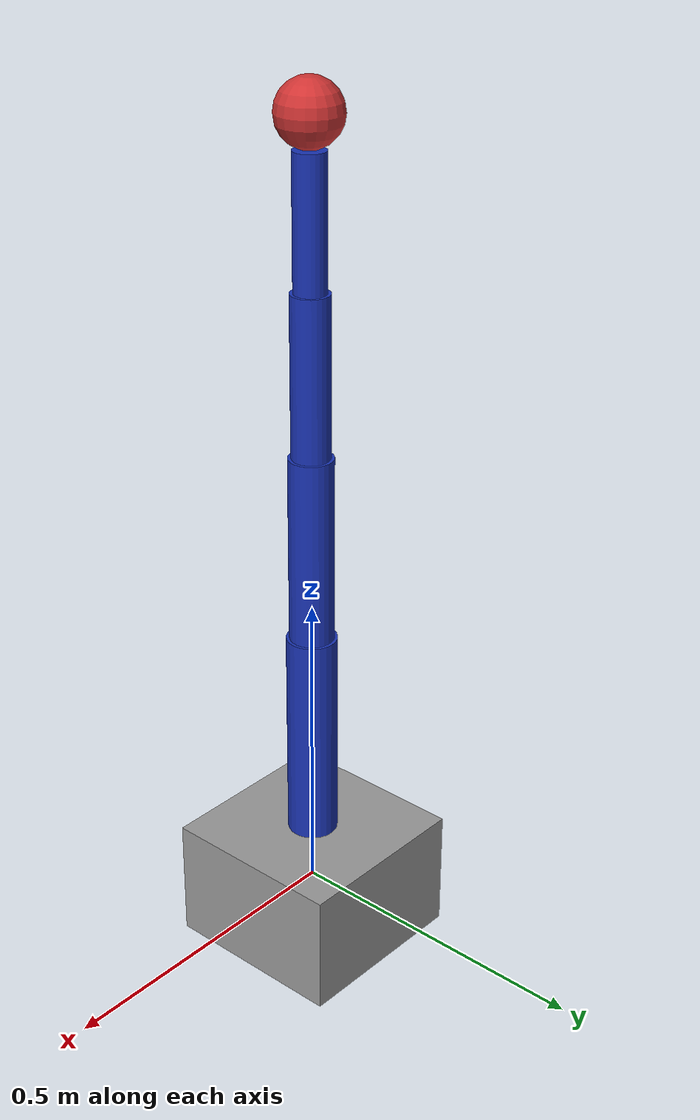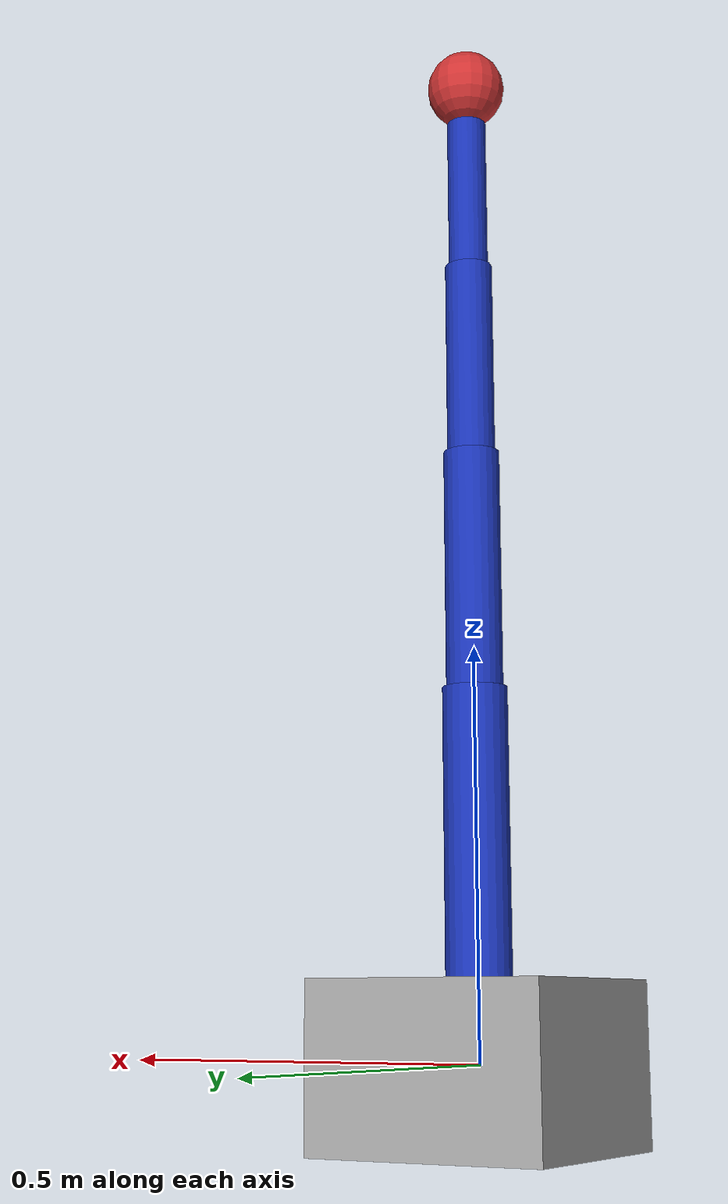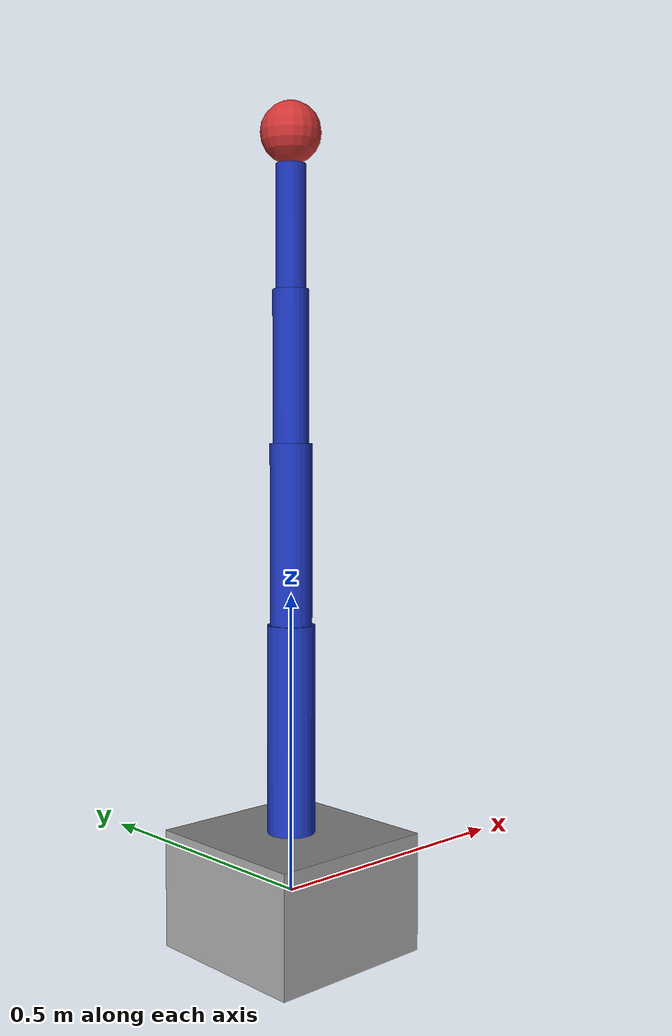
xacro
<?xml version="1.0"?>
<robot name="hrl_manipulator" xmlns:xacro="http://www.ros.org/wiki/xacro">
  <xacro:property name="mass" value="1.0"/>
  <xacro:property name="inertia" value="0.01"/>

  <link name="base_link">
    <inertial>
      <mass value="1.0"/>
      <origin xyz="0 0 0"/>
      <inertia ixx="0.1" ixy="0.0" ixz="0.0" iyy="0.1" iyz="0.0" izz="0.1"/>
    </inertial>
    <visual>
      <origin xyz="0 0 0" rpy="0 0 0"/>
      <geometry>
        <box size="0.3 0.3 0.2"/>
      </geometry>
      <material name="grey">
        <color rgba="0.6 0.6 0.6 1.0"/>
      </material>
    </visual>
    <collision>
      <origin xyz="0 0 0" rpy="0 0 0"/>
      <geometry>
        <box size="0.3 0.3 0.2"/>
      </geometry>
    </collision>
  </link>

  <xacro:macro name="manip_link" params="index length radius">
    <link name="link${index}">
      <inertial>
        <origin xyz="0 0 ${length / 2}"/>
        <mass value="${mass}"/>
        <inertia ixx="${inertia}" ixy="0.0" ixz="0.0" iyy="${inertia}" iyz="0.0" izz="${inertia}"/>
      </inertial>
      <visual>
        <origin xyz="0 0 ${length / 2}" rpy="0 0 0"/>
        <geometry>
          <cylinder length="${length}" radius="${radius}"/>
        </geometry>
        <material name="blue">
          <color rgba="0.1 0.2 0.7 1.0"/>
        </material>
      </visual>
      <collision>
        <origin xyz="0 0 ${length / 2}" rpy="0 0 0"/>
        <geometry>
          <cylinder length="${length}" radius="${radius}"/>
        </geometry>
      </collision>
    </link>
  </xacro:macro>

  <xacro:manip_link index="1" length="0.35" radius="0.04"/>
  <xacro:manip_link index="2" length="0.30" radius="0.035"/>
  <xacro:manip_link index="3" length="0.25" radius="0.03"/>
  <xacro:manip_link index="4" length="0.20" radius="0.025"/>

  <joint name="joint1" type="revolute">
    <parent link="base_link"/>
    <child link="link1"/>
    <origin xyz="0 0 0.1" rpy="0 0 0"/>
    <axis xyz="0 0 1"/>
    <limit lower="-2.79" upper="2.79" velocity="2.0" effort="40.0"/>
    <dynamics damping="0.1" friction="0.0"/>
  </joint>

  <joint name="joint2" type="revolute">
    <parent link="link1"/>
    <child link="link2"/>
    <origin xyz="0 0 0.35" rpy="0 0 0"/>
    <axis xyz="0 1 0"/>
    <limit lower="-2.36" upper="2.36" velocity="2.0" effort="35.0"/>
    <dynamics damping="0.1" friction="0.0"/>
  </joint>

  <joint name="joint3" type="revolute">
    <parent link="link2"/>
    <child link="link3"/>
    <origin xyz="0 0 0.30" rpy="0 0 0"/>
    <axis xyz="0 1 0"/>
    <limit lower="-2.36" upper="2.36" velocity="2.5" effort="30.0"/>
    <dynamics damping="0.1" friction="0.0"/>
  </joint>

  <joint name="joint4" type="revolute">
    <parent link="link3"/>
    <child link="link4"/>
    <origin xyz="0 0 0.25" rpy="0 0 0"/>
    <axis xyz="0 1 0"/>
    <limit lower="-2.79" upper="2.79" velocity="3.0" effort="25.0"/>
    <dynamics damping="0.1" friction="0.0"/>
  </joint>

  <link name="tool0">
    <inertial>
      <origin xyz="0 0 0.05"/>
      <mass value="0.2"/>
      <inertia ixx="0.005" ixy="0.0" ixz="0.0" iyy="0.005" iyz="0.0" izz="0.005"/>
    </inertial>
    <visual>
      <origin xyz="0 0 0.05" rpy="0 0 0"/>
      <geometry>
        <sphere radius="0.05"/>
      </geometry>
      <material name="gripper">
        <color rgba="0.8 0.2 0.2 1.0"/>
      </material>
    </visual>
    <collision>
      <origin xyz="0 0 0.05" rpy="0 0 0"/>
      <geometry>
        <sphere radius="0.05"/>
      </geometry>
    </collision>
  </link>

  <joint name="joint5" type="fixed">
    <parent link="link4"/>
    <child link="tool0"/>
    <origin xyz="0 0 0.20" rpy="0 0 0"/>
  </joint>

  <gazebo>
    <plugin name="gazebo_ros_control" filename="libgazebo_ros2_control.so">
      <parameters>$(find-pkg-share hrl_gazebo)/urdf/ros2_control.yaml</parameters>
    </plugin>
  </gazebo>

  <ros2_control name="GazeboSystem" type="system">
    <hardware>
      <plugin>gazebo_ros2_control/GazeboSystem</plugin>
    </hardware>
    <joint name="joint1">
      <command_interface name="position"/>
      <state_interface name="position"/>
      <state_interface name="velocity"/>
    </joint>
    <joint name="joint2">
      <command_interface name="position"/>
      <state_interface name="position"/>
      <state_interface name="velocity"/>
    </joint>
    <joint name="joint3">
      <command_interface name="position"/>
      <state_interface name="position"/>
      <state_interface name="velocity"/>
    </joint>
    <joint name="joint4">
      <command_interface name="position"/>
      <state_interface name="position"/>
      <state_interface name="velocity"/>
    </joint>
  </ros2_control>
</robot>
